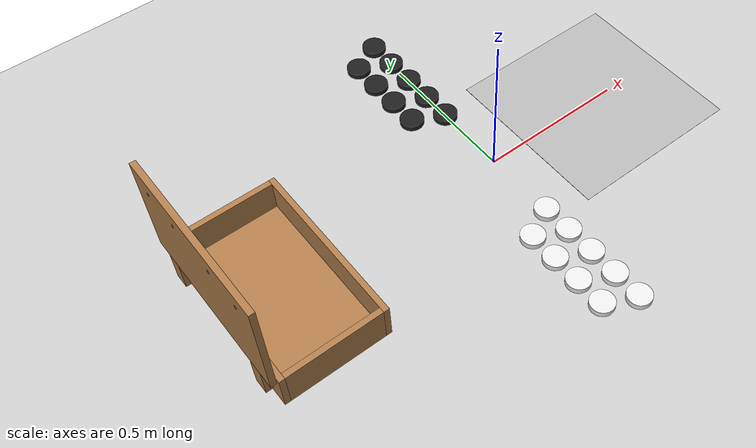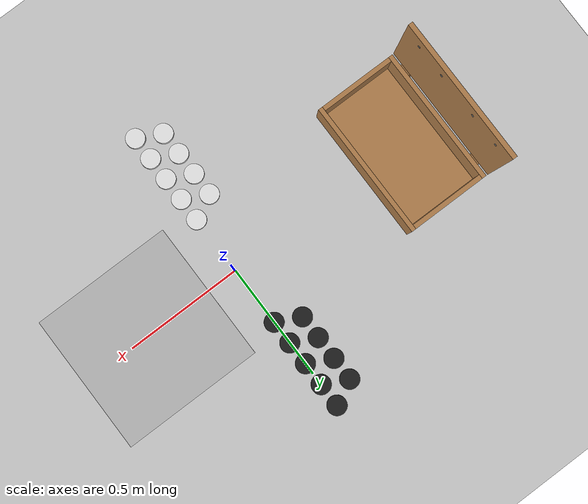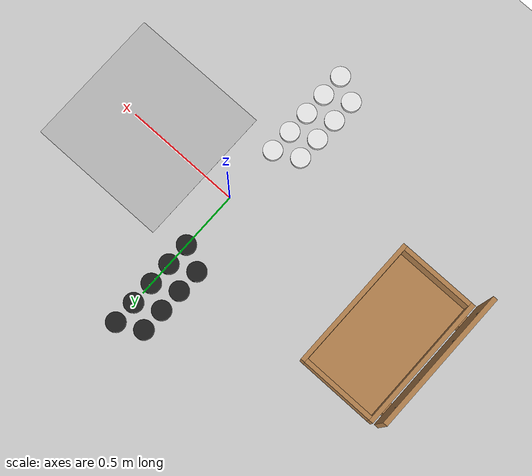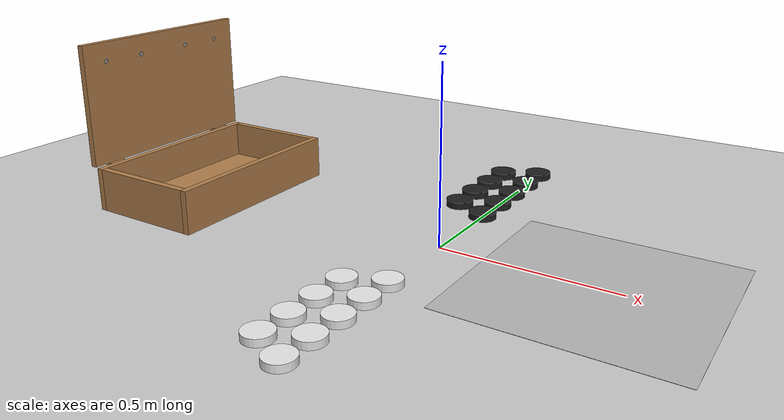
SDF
<sdf version="1.6">
 <world name="default">
  <light name="sun" type="directional">
   <pose>0 0 10 0 -0 0</pose>
   <diffuse>0.8 0.8 0.8 1</diffuse>
   <specular>0.2 0.2 0.2 1</specular>
   <attenuation>
    <range>1000</range>
    <constant>0.9</constant>
    <linear>0.01</linear>
    <quadratic>0.001</quadratic>
   </attenuation>
   <direction>-0.5 0.1 -0.9</direction>
  </light>
  <model name="ground_plane">
   <static>1</static>
   <link name="link">
    <collision name="collision">
     <geometry><plane><normal>0 0 1</normal><size>100 100</size></plane></geometry>
     <surface>
      <contact><collide_bitmask>65535</collide_bitmask></contact>
      <friction><ode><mu>100</mu><mu2>50</mu2></ode></friction>
     </surface>
    </collision>
    <visual name="visual">
     <cast_shadows>0</cast_shadows>
     <geometry><plane><normal>0 0 1</normal><size>100 100</size></plane></geometry>
     <material>
      <script><uri>file://media/materials/scripts/gazebo.material</uri><name>Gazebo/Grey</name></script>
     </material>
    </visual>
   </link>
  </model>
  <gravity>0 0 -9.8</gravity>
  <magnetic_field>6e-06 2.3e-05 -4.2e-05</magnetic_field>
  <atmosphere type="adiabatic"/>
  <physics name="default_physics" default="0" type="ode">
   <max_step_size>0.002</max_step_size>
   <real_time_factor>1</real_time_factor>
   <real_time_update_rate>1000</real_time_update_rate>
  </physics>
  <scene><ambient>0.4 0.4 0.4 1</ambient><background>0.7 0.7 0.7 1</background><shadows>1</shadows></scene>
  <audio><device>default</device></audio>
  <spherical_coordinates>
   <surface_model>EARTH_WGS84</surface_model>
   <latitude_deg>0</latitude_deg>
   <longitude_deg>0</longitude_deg>
   <elevation>0</elevation>
   <heading_deg>0</heading_deg>
  </spherical_coordinates>
  <model name="wooden_case">
   <link name="base">
    <pose>0 0 0.024 0 -0 0</pose>
    <inertial>
     <pose>-0.022184 0 0.171592 0 -0 0</pose>
     <mass>3.96264</mass>
     <inertia>
      <ixx>0.213536</ixx>
      <ixy>0</ixy>
      <ixz>0.000779377</ixz>
      <iyy>0.0708943</iyy>
      <iyz>0</iyz>
      <izz>0.154604</izz>
     </inertia>
    </inertial>
    <collision name="collision_back">
     <pose>-0.053975 0 0.1778 0 -0 0</pose>
     <geometry><box><size>0.01905 0.5461 0.3175</size></box></geometry>
     <surface>
      <contact>
       <poissons_ratio>0.347</poissons_ratio>
       <elastic_modulus>8.8e+09</elastic_modulus>
       <ode><kp>100000</kp><kd>100</kd><max_vel>100</max_vel><min_depth>0.001</min_depth></ode>
      </contact>
      <friction>
       <torsional>
        <coefficient>1</coefficient>
        <use_patch_radius>0</use_patch_radius>
        <surface_radius>0.01</surface_radius>
       </torsional>
      </friction>
     </surface>
    </collision>
    <visual name="visual_back">
     <pose>-0.053975 0 0.1778 0 -0 0</pose>
     <geometry><box><size>0.01905 0.5461 0.3175</size></box></geometry>
     <material>
      <script><uri>file://media/materials/scripts/gazebo.material</uri><name>Gazebo/Wood</name></script>
     </material>
    </visual>
    <collision name="collision_bottom">
     <pose>0 0 0.009525 0 -0 0</pose>
     <geometry><box><size>0.127 0.5842 0.01905</size></box></geometry>
     <surface>
      <contact>
       <poissons_ratio>0.347</poissons_ratio>
       <elastic_modulus>8.8e+09</elastic_modulus>
       <ode><kp>100000</kp><kd>100</kd><max_vel>100</max_vel><min_depth>0.001</min_depth></ode>
      </contact>
      <friction>
       <torsional>
        <coefficient>1</coefficient>
        <use_patch_radius>0</use_patch_radius>
        <surface_radius>0.01</surface_radius>
       </torsional>
      </friction>
     </surface>
    </collision>
    <visual name="visual_bottom">
     <pose>0 0 0.009525 0 -0 0</pose>
     <geometry><box><size>0.127 0.5842 0.01905</size></box></geometry>
     <material>
      <script><uri>file://media/materials/scripts/gazebo.material</uri><name>Gazebo/Wood</name></script>
     </material>
    </visual>
    <collision name="collision_top">
     <pose>0 0 0.346075 0 -0 0</pose>
     <geometry><box><size>0.127 0.5842 0.01905</size></box></geometry>
     <surface>
      <contact>
       <poissons_ratio>0.347</poissons_ratio>
       <elastic_modulus>8.8e+09</elastic_modulus>
       <ode><kp>100000</kp><kd>100</kd><max_vel>100</max_vel><min_depth>0.001</min_depth></ode>
      </contact>
      <friction>
       <torsional>
        <coefficient>1</coefficient>
        <use_patch_radius>0</use_patch_radius>
        <surface_radius>0.01</surface_radius>
       </torsional>
      </friction>
     </surface>
    </collision>
    <visual name="visual_top">
     <pose>0 0 0.346075 0 -0 0</pose>
     <geometry><box><size>0.127 0.5842 0.01905</size></box></geometry>
     <material>
      <script><uri>file://media/materials/scripts/gazebo.material</uri><name>Gazebo/Wood</name></script>
     </material>
    </visual>
    <collision name="collision_left">
     <pose>0 -0.282575 0.1778 0 -0 0</pose>
     <geometry><box><size>0.127 0.01905 0.3175</size></box></geometry>
     <surface>
      <contact>
       <poissons_ratio>0.347</poissons_ratio>
       <elastic_modulus>8.8e+09</elastic_modulus>
       <ode><kp>100000</kp><kd>100</kd><max_vel>100</max_vel><min_depth>0.001</min_depth></ode>
      </contact>
      <friction>
       <torsional>
        <coefficient>1</coefficient>
        <use_patch_radius>0</use_patch_radius>
        <surface_radius>0.01</surface_radius>
       </torsional>
      </friction>
     </surface>
    </collision>
    <visual name="visual_left">
     <pose>0 -0.282575 0.1778 0 -0 0</pose>
     <geometry><box><size>0.127 0.01905 0.3175</size></box></geometry>
     <material>
      <script><uri>file://media/materials/scripts/gazebo.material</uri><name>Gazebo/Wood</name></script>
     </material>
    </visual>
    <collision name="collision_right">
     <pose>0 0.282575 0.1778 0 -0 0</pose>
     <geometry><box><size>0.127 0.01905 0.3175</size></box></geometry>
     <surface>
      <contact>
       <poissons_ratio>0.347</poissons_ratio>
       <elastic_modulus>8.8e+09</elastic_modulus>
       <ode><kp>100000</kp><kd>100</kd><max_vel>100</max_vel><min_depth>0.001</min_depth></ode>
      </contact>
      <friction>
       <torsional>
        <coefficient>1</coefficient>
        <use_patch_radius>0</use_patch_radius>
        <surface_radius>0.01</surface_radius>
       </torsional>
      </friction>
     </surface>
    </collision>
    <visual name="visual_right">
     <pose>0 0.282575 0.1778 0 -0 0</pose>
     <geometry><box><size>0.127 0.01905 0.3175</size></box></geometry>
     <material>
      <script><uri>file://media/materials/scripts/gazebo.material</uri><name>Gazebo/Wood</name></script>
     </material>
    </visual>
    <collision name="collision_block_left">
     <pose>0.0095 -0.2151 -0.012 0 -0 0</pose>
     <geometry><box><size>0.108 0.05 0.024</size></box></geometry>
     <surface>
      <contact>
       <poissons_ratio>0.347</poissons_ratio>
       <elastic_modulus>8.8e+09</elastic_modulus>
       <ode><kp>100000</kp><kd>100</kd><max_vel>100</max_vel><min_depth>0.001</min_depth></ode>
      </contact>
      <friction>
       <torsional>
        <coefficient>1</coefficient>
        <use_patch_radius>0</use_patch_radius>
        <surface_radius>0.01</surface_radius>
       </torsional>
      </friction>
     </surface>
    </collision>
    <visual name="visual_block_left">
     <pose>0.0095 -0.2151 -0.012 0 -0 0</pose>
     <geometry><box><size>0.108 0.05 0.024</size></box></geometry>
     <material>
      <script><uri>file://media/materials/scripts/gazebo.material</uri><name>Gazebo/Wood</name></script>
     </material>
    </visual>
    <collision name="collision_block_right">
     <pose>0.0095 0.2151 -0.012 0 -0 0</pose>
     <geometry><box><size>0.108 0.05 0.024</size></box></geometry>
     <surface>
      <contact>
       <poissons_ratio>0.347</poissons_ratio>
       <elastic_modulus>8.8e+09</elastic_modulus>
       <ode><kp>100000</kp><kd>100</kd><max_vel>100</max_vel><min_depth>0.001</min_depth></ode>
      </contact>
      <friction>
       <torsional>
        <coefficient>1</coefficient>
        <use_patch_radius>0</use_patch_radius>
        <surface_radius>0.01</surface_radius>
       </torsional>
      </friction>
     </surface>
    </collision>
    <visual name="visual_block_right">
     <pose>0.0095 0.2151 -0.012 0 -0 0</pose>
     <geometry><box><size>0.108 0.05 0.024</size></box></geometry>
     <material>
      <script><uri>file://media/materials/scripts/gazebo.material</uri><name>Gazebo/Wood</name></script>
     </material>
    </visual>
   </link>
   <link name="lid">
    <pose>0.243775 0 0.009525 0 -0 0</pose>
    <inertial>
     <mass>1.97874</mass>
     <inertia>
      <ixx>0.0563367</ixx>
      <ixy>0</ixy>
      <ixz>0</ixz>
      <iyy>0.020911</iyy>
      <iyz>0</iyz>
      <izz>0.0771281</izz>
     </inertia>
    </inertial>
    <collision name="collision">
     <geometry><box><size>0.3556 0.5842 0.01905</size></box></geometry>
     <surface>
      <contact>
       <poissons_ratio>0.347</poissons_ratio>
       <elastic_modulus>8.8e+09</elastic_modulus>
       <ode><kp>100000</kp><kd>100</kd><max_vel>100</max_vel><min_depth>0.001</min_depth></ode>
      </contact>
      <friction>
       <torsional>
        <coefficient>1</coefficient>
        <use_patch_radius>0</use_patch_radius>
        <surface_radius>0.01</surface_radius>
       </torsional>
      </friction>
     </surface>
    </collision>
    <visual name="visual">
     <geometry><box><size>0.3556 0.5842 0.01905</size></box></geometry>
     <material>
      <script><uri>file://media/materials/scripts/gazebo.material</uri><name>Gazebo/Wood</name></script>
     </material>
    </visual>
    <visual name="tee_nut_1">
     <pose>0.122 -0.216 0 0 -0 0</pose>
     <geometry><cylinder><radius>0.00635</radius><length>0.0192405</length></cylinder></geometry>
     <material>
      <script><uri>file://media/materials/scripts/gazebo.material</uri><name>Gazebo/Grey</name></script>
     </material>
    </visual>
    <visual name="tee_nut_2">
     <pose>0.122 -0.088 0 0 -0 0</pose>
     <geometry><cylinder><radius>0.00635</radius><length>0.0192405</length></cylinder></geometry>
     <material>
      <script><uri>file://media/materials/scripts/gazebo.material</uri><name>Gazebo/Grey</name></script>
     </material>
    </visual>
    <visual name="tee_nut_3">
     <pose>0.122 0.088 0 0 -0 0</pose>
     <geometry><cylinder><radius>0.00635</radius><length>0.0192405</length></cylinder></geometry>
     <material>
      <script><uri>file://media/materials/scripts/gazebo.material</uri><name>Gazebo/Grey</name></script>
     </material>
    </visual>
    <visual name="tee_nut_4">
     <pose>0.122 0.216 0 0 -0 0</pose>
     <geometry><cylinder><radius>0.00635</radius><length>0.0192405</length></cylinder></geometry>
     <material>
      <script><uri>file://media/materials/scripts/gazebo.material</uri><name>Gazebo/Grey</name></script>
     </material>
    </visual>
   </link>
   <joint name="lid_hinge" type="revolute">
    <pose>-0.1778 0 0.01905 0 -0 0</pose>
    <parent>base</parent>
    <child>lid</child>
    <axis>
     <xyz>0 1 0</xyz>
     <limit><upper>0.523599</upper><lower>-1.5708</lower></limit>
     <use_parent_model_frame>0</use_parent_model_frame>
     <dynamics><spring_reference>0</spring_reference><spring_stiffness>0</spring_stiffness></dynamics>
    </axis>
   </joint>
   <pose>-0.999997 0 0.062475 0.000939 -1.57074 3.13906</pose>
  </model>
  <model name="black_piece">
   <link name="link">
    <inertial>
     <mass>0.2</mass>
     <inertia>
      <ixx>8.667e-05</ixx>
      <ixy>0</ixy>
      <ixz>0</ixz>
      <iyy>8.667e-05</iyy>
      <iyz>0</iyz>
      <izz>0.00016</izz>
     </inertia>
    </inertial>
    <visual name="visual">
     <geometry><cylinder><radius>0.04</radius><length>0.02</length></cylinder></geometry>
     <material>
      <script><name>Gazebo/Black</name><uri>file://media/materials/scripts/gazebo.material</uri></script>
      <shader type="vertex"><normal_map>__default__</normal_map></shader>
     </material>
    </visual>
    <collision name="collision">
     <geometry><cylinder><radius>0.04</radius><length>0.02</length></cylinder></geometry>
     <surface>
      <friction>
       <ode><mu>1</mu><mu2>1</mu2><fdir1>0 0 0</fdir1><slip1>0</slip1><slip2>0</slip2></ode>
       <torsional>
        <coefficient>1</coefficient>
        <patch_radius>0</patch_radius>
        <surface_radius>0</surface_radius>
        <use_patch_radius>1</use_patch_radius>
        <ode><slip>0</slip></ode>
       </torsional>
      </friction>
      <bounce><restitution_coefficient>0</restitution_coefficient><threshold>1e+06</threshold></bounce>
      <contact>
       <collide_without_contact>0</collide_without_contact>
       <collide_without_contact_bitmask>1</collide_without_contact_bitmask>
       <collide_bitmask>1</collide_bitmask>
       <ode>
        <soft_cfm>0</soft_cfm>
        <soft_erp>0.2</soft_erp>
        <kp>1e+13</kp>
        <kd>1</kd>
        <max_vel>1</max_vel>
        <min_depth>0</min_depth>
       </ode>
       <bullet>
        <split_impulse>1</split_impulse>
        <split_impulse_penetration_threshold>-0.01</split_impulse_penetration_threshold>
        <soft_cfm>0</soft_cfm>
        <soft_erp>0.2</soft_erp>
        <kp>1e+13</kp>
        <kd>1</kd>
       </bullet>
      </contact>
     </surface>
    </collision>
   </link>
   <static>0</static>
   <pose>-5e-06 0.250002 0.009993 -0.000139 0.000139 0.000142</pose>
  </model>
  <model name="black_piece_0">
   <link name="link">
    <inertial>
     <mass>0.2</mass>
     <inertia>
      <ixx>8.667e-05</ixx>
      <ixy>0</ixy>
      <ixz>0</ixz>
      <iyy>8.667e-05</iyy>
      <iyz>0</iyz>
      <izz>0.00016</izz>
     </inertia>
    </inertial>
    <visual name="visual">
     <geometry><cylinder><radius>0.04</radius><length>0.02</length></cylinder></geometry>
     <material>
      <script><name>Gazebo/Black</name><uri>file://media/materials/scripts/gazebo.material</uri></script>
      <shader type="vertex"><normal_map>__default__</normal_map></shader>
     </material>
    </visual>
    <collision name="collision">
     <geometry><cylinder><radius>0.04</radius><length>0.02</length></cylinder></geometry>
     <surface>
      <friction>
       <ode><mu>1</mu><mu2>1</mu2><fdir1>0 0 0</fdir1><slip1>0</slip1><slip2>0</slip2></ode>
       <torsional>
        <coefficient>1</coefficient>
        <patch_radius>0</patch_radius>
        <surface_radius>0</surface_radius>
        <use_patch_radius>1</use_patch_radius>
        <ode><slip>0</slip></ode>
       </torsional>
      </friction>
      <bounce><restitution_coefficient>0</restitution_coefficient><threshold>1e+06</threshold></bounce>
      <contact>
       <collide_without_contact>0</collide_without_contact>
       <collide_without_contact_bitmask>1</collide_without_contact_bitmask>
       <collide_bitmask>1</collide_bitmask>
       <ode>
        <soft_cfm>0</soft_cfm>
        <soft_erp>0.2</soft_erp>
        <kp>1e+13</kp>
        <kd>1</kd>
        <max_vel>1</max_vel>
        <min_depth>0</min_depth>
       </ode>
       <bullet>
        <split_impulse>1</split_impulse>
        <split_impulse_penetration_threshold>-0.01</split_impulse_penetration_threshold>
        <soft_cfm>0</soft_cfm>
        <soft_erp>0.2</soft_erp>
        <kp>1e+13</kp>
        <kd>1</kd>
       </bullet>
      </contact>
     </surface>
    </collision>
   </link>
   <static>0</static>
   <pose>2e-06 0.349998 0.009971 3.5e-05 3.1e-05 -3e-06</pose>
  </model>
  <model name="black_piece_1">
   <link name="link">
    <inertial>
     <mass>0.2</mass>
     <inertia>
      <ixx>8.667e-05</ixx>
      <ixy>0</ixy>
      <ixz>0</ixz>
      <iyy>8.667e-05</iyy>
      <iyz>0</iyz>
      <izz>0.00016</izz>
     </inertia>
    </inertial>
    <visual name="visual">
     <geometry><cylinder><radius>0.04</radius><length>0.02</length></cylinder></geometry>
     <material>
      <script><name>Gazebo/Black</name><uri>file://media/materials/scripts/gazebo.material</uri></script>
      <shader type="vertex"><normal_map>__default__</normal_map></shader>
     </material>
    </visual>
    <collision name="collision">
     <geometry><cylinder><radius>0.04</radius><length>0.02</length></cylinder></geometry>
     <surface>
      <friction>
       <ode><mu>1</mu><mu2>1</mu2><fdir1>0 0 0</fdir1><slip1>0</slip1><slip2>0</slip2></ode>
       <torsional>
        <coefficient>1</coefficient>
        <patch_radius>0</patch_radius>
        <surface_radius>0</surface_radius>
        <use_patch_radius>1</use_patch_radius>
        <ode><slip>0</slip></ode>
       </torsional>
      </friction>
      <bounce><restitution_coefficient>0</restitution_coefficient><threshold>1e+06</threshold></bounce>
      <contact>
       <collide_without_contact>0</collide_without_contact>
       <collide_without_contact_bitmask>1</collide_without_contact_bitmask>
       <collide_bitmask>1</collide_bitmask>
       <ode>
        <soft_cfm>0</soft_cfm>
        <soft_erp>0.2</soft_erp>
        <kp>1e+13</kp>
        <kd>1</kd>
        <max_vel>1</max_vel>
        <min_depth>0</min_depth>
       </ode>
       <bullet>
        <split_impulse>1</split_impulse>
        <split_impulse_penetration_threshold>-0.01</split_impulse_penetration_threshold>
        <soft_cfm>0</soft_cfm>
        <soft_erp>0.2</soft_erp>
        <kp>1e+13</kp>
        <kd>1</kd>
       </bullet>
      </contact>
     </surface>
    </collision>
   </link>
   <static>0</static>
   <pose>5e-06 0.449996 0.009985 0.000117 0.000116 -5.7e-05</pose>
  </model>
  <model name="black_piece_2">
   <link name="link">
    <inertial>
     <mass>0.2</mass>
     <inertia>
      <ixx>8.667e-05</ixx>
      <ixy>0</ixy>
      <ixz>0</ixz>
      <iyy>8.667e-05</iyy>
      <iyz>0</iyz>
      <izz>0.00016</izz>
     </inertia>
    </inertial>
    <visual name="visual">
     <geometry><cylinder><radius>0.04</radius><length>0.02</length></cylinder></geometry>
     <material>
      <script><name>Gazebo/Black</name><uri>file://media/materials/scripts/gazebo.material</uri></script>
      <shader type="vertex"><normal_map>__default__</normal_map></shader>
     </material>
    </visual>
    <collision name="collision">
     <geometry><cylinder><radius>0.04</radius><length>0.02</length></cylinder></geometry>
     <surface>
      <friction>
       <ode><mu>1</mu><mu2>1</mu2><fdir1>0 0 0</fdir1><slip1>0</slip1><slip2>0</slip2></ode>
       <torsional>
        <coefficient>1</coefficient>
        <patch_radius>0</patch_radius>
        <surface_radius>0</surface_radius>
        <use_patch_radius>1</use_patch_radius>
        <ode><slip>0</slip></ode>
       </torsional>
      </friction>
      <bounce><restitution_coefficient>0</restitution_coefficient><threshold>1e+06</threshold></bounce>
      <contact>
       <collide_without_contact>0</collide_without_contact>
       <collide_without_contact_bitmask>1</collide_without_contact_bitmask>
       <collide_bitmask>1</collide_bitmask>
       <ode>
        <soft_cfm>0</soft_cfm>
        <soft_erp>0.2</soft_erp>
        <kp>1e+13</kp>
        <kd>1</kd>
        <max_vel>1</max_vel>
        <min_depth>0</min_depth>
       </ode>
       <bullet>
        <split_impulse>1</split_impulse>
        <split_impulse_penetration_threshold>-0.01</split_impulse_penetration_threshold>
        <soft_cfm>0</soft_cfm>
        <soft_erp>0.2</soft_erp>
        <kp>1e+13</kp>
        <kd>1</kd>
       </bullet>
      </contact>
     </surface>
    </collision>
   </link>
   <static>0</static>
   <pose>-1.4e-05 0.550035 0.01 0 -0 -0.000899</pose>
  </model>
  <model name="black_piece_3">
   <link name="link">
    <inertial>
     <mass>0.2</mass>
     <inertia>
      <ixx>8.667e-05</ixx>
      <ixy>0</ixy>
      <ixz>0</ixz>
      <iyy>8.667e-05</iyy>
      <iyz>0</iyz>
      <izz>0.00016</izz>
     </inertia>
    </inertial>
    <visual name="visual">
     <geometry><cylinder><radius>0.04</radius><length>0.02</length></cylinder></geometry>
     <material>
      <script><name>Gazebo/Black</name><uri>file://media/materials/scripts/gazebo.material</uri></script>
      <shader type="vertex"><normal_map>__default__</normal_map></shader>
     </material>
    </visual>
    <collision name="collision">
     <geometry><cylinder><radius>0.04</radius><length>0.02</length></cylinder></geometry>
     <surface>
      <friction>
       <ode><mu>1</mu><mu2>1</mu2><fdir1>0 0 0</fdir1><slip1>0</slip1><slip2>0</slip2></ode>
       <torsional>
        <coefficient>1</coefficient>
        <patch_radius>0</patch_radius>
        <surface_radius>0</surface_radius>
        <use_patch_radius>1</use_patch_radius>
        <ode><slip>0</slip></ode>
       </torsional>
      </friction>
      <bounce><restitution_coefficient>0</restitution_coefficient><threshold>1e+06</threshold></bounce>
      <contact>
       <collide_without_contact>0</collide_without_contact>
       <collide_without_contact_bitmask>1</collide_without_contact_bitmask>
       <collide_bitmask>1</collide_bitmask>
       <ode>
        <soft_cfm>0</soft_cfm>
        <soft_erp>0.2</soft_erp>
        <kp>1e+13</kp>
        <kd>1</kd>
        <max_vel>1</max_vel>
        <min_depth>0</min_depth>
       </ode>
       <bullet>
        <split_impulse>1</split_impulse>
        <split_impulse_penetration_threshold>-0.01</split_impulse_penetration_threshold>
        <soft_cfm>0</soft_cfm>
        <soft_erp>0.2</soft_erp>
        <kp>1e+13</kp>
        <kd>1</kd>
       </bullet>
      </contact>
     </surface>
    </collision>
   </link>
   <static>0</static>
   <pose>-4e-06 0.650004 0.009996 -7.3e-05 -7.5e-05 -1.8e-05</pose>
  </model>
  <model name="black_piece_4">
   <link name="link">
    <inertial>
     <mass>0.2</mass>
     <inertia>
      <ixx>8.667e-05</ixx>
      <ixy>0</ixy>
      <ixz>0</ixz>
      <iyy>8.667e-05</iyy>
      <iyz>0</iyz>
      <izz>0.00016</izz>
     </inertia>
    </inertial>
    <visual name="visual">
     <geometry><cylinder><radius>0.04</radius><length>0.02</length></cylinder></geometry>
     <material>
      <script><name>Gazebo/Black</name><uri>file://media/materials/scripts/gazebo.material</uri></script>
      <shader type="vertex"><normal_map>__default__</normal_map></shader>
     </material>
    </visual>
    <collision name="collision">
     <geometry><cylinder><radius>0.04</radius><length>0.02</length></cylinder></geometry>
     <surface>
      <friction>
       <ode><mu>1</mu><mu2>1</mu2><fdir1>0 0 0</fdir1><slip1>0</slip1><slip2>0</slip2></ode>
       <torsional>
        <coefficient>1</coefficient>
        <patch_radius>0</patch_radius>
        <surface_radius>0</surface_radius>
        <use_patch_radius>1</use_patch_radius>
        <ode><slip>0</slip></ode>
       </torsional>
      </friction>
      <bounce><restitution_coefficient>0</restitution_coefficient><threshold>1e+06</threshold></bounce>
      <contact>
       <collide_without_contact>0</collide_without_contact>
       <collide_without_contact_bitmask>1</collide_without_contact_bitmask>
       <collide_bitmask>1</collide_bitmask>
       <ode>
        <soft_cfm>0</soft_cfm>
        <soft_erp>0.2</soft_erp>
        <kp>1e+13</kp>
        <kd>1</kd>
        <max_vel>1</max_vel>
        <min_depth>0</min_depth>
       </ode>
       <bullet>
        <split_impulse>1</split_impulse>
        <split_impulse_penetration_threshold>-0.01</split_impulse_penetration_threshold>
        <soft_cfm>0</soft_cfm>
        <soft_erp>0.2</soft_erp>
        <kp>1e+13</kp>
        <kd>1</kd>
       </bullet>
      </contact>
     </surface>
    </collision>
   </link>
   <static>0</static>
   <pose>-0.100004 0.300004 0.009965 5.2e-05 5.2e-05 -6e-06</pose>
  </model>
  <model name="black_piece_5">
   <link name="link">
    <inertial>
     <mass>0.2</mass>
     <inertia>
      <ixx>8.667e-05</ixx>
      <ixy>0</ixy>
      <ixz>0</ixz>
      <iyy>8.667e-05</iyy>
      <iyz>0</iyz>
      <izz>0.00016</izz>
     </inertia>
    </inertial>
    <visual name="visual">
     <geometry><cylinder><radius>0.04</radius><length>0.02</length></cylinder></geometry>
     <material>
      <script><name>Gazebo/Black</name><uri>file://media/materials/scripts/gazebo.material</uri></script>
      <shader type="vertex"><normal_map>__default__</normal_map></shader>
     </material>
    </visual>
    <collision name="collision">
     <geometry><cylinder><radius>0.04</radius><length>0.02</length></cylinder></geometry>
     <surface>
      <friction>
       <ode><mu>1</mu><mu2>1</mu2><fdir1>0 0 0</fdir1><slip1>0</slip1><slip2>0</slip2></ode>
       <torsional>
        <coefficient>1</coefficient>
        <patch_radius>0</patch_radius>
        <surface_radius>0</surface_radius>
        <use_patch_radius>1</use_patch_radius>
        <ode><slip>0</slip></ode>
       </torsional>
      </friction>
      <bounce><restitution_coefficient>0</restitution_coefficient><threshold>1e+06</threshold></bounce>
      <contact>
       <collide_without_contact>0</collide_without_contact>
       <collide_without_contact_bitmask>1</collide_without_contact_bitmask>
       <collide_bitmask>1</collide_bitmask>
       <ode>
        <soft_cfm>0</soft_cfm>
        <soft_erp>0.2</soft_erp>
        <kp>1e+13</kp>
        <kd>1</kd>
        <max_vel>1</max_vel>
        <min_depth>0</min_depth>
       </ode>
       <bullet>
        <split_impulse>1</split_impulse>
        <split_impulse_penetration_threshold>-0.01</split_impulse_penetration_threshold>
        <soft_cfm>0</soft_cfm>
        <soft_erp>0.2</soft_erp>
        <kp>1e+13</kp>
        <kd>1</kd>
       </bullet>
      </contact>
     </surface>
    </collision>
   </link>
   <static>0</static>
   <pose>-0.1 0.4 0.009994 -3.8e-05 -3.8e-05 -8e-06</pose>
  </model>
  <model name="black_piece_6">
   <link name="link">
    <inertial>
     <mass>0.2</mass>
     <inertia>
      <ixx>8.667e-05</ixx>
      <ixy>0</ixy>
      <ixz>0</ixz>
      <iyy>8.667e-05</iyy>
      <iyz>0</iyz>
      <izz>0.00016</izz>
     </inertia>
    </inertial>
    <visual name="visual">
     <geometry><cylinder><radius>0.04</radius><length>0.02</length></cylinder></geometry>
     <material>
      <script><name>Gazebo/Black</name><uri>file://media/materials/scripts/gazebo.material</uri></script>
      <shader type="vertex"><normal_map>__default__</normal_map></shader>
     </material>
    </visual>
    <collision name="collision">
     <geometry><cylinder><radius>0.04</radius><length>0.02</length></cylinder></geometry>
     <surface>
      <friction>
       <ode><mu>1</mu><mu2>1</mu2><fdir1>0 0 0</fdir1><slip1>0</slip1><slip2>0</slip2></ode>
       <torsional>
        <coefficient>1</coefficient>
        <patch_radius>0</patch_radius>
        <surface_radius>0</surface_radius>
        <use_patch_radius>1</use_patch_radius>
        <ode><slip>0</slip></ode>
       </torsional>
      </friction>
      <bounce><restitution_coefficient>0</restitution_coefficient><threshold>1e+06</threshold></bounce>
      <contact>
       <collide_without_contact>0</collide_without_contact>
       <collide_without_contact_bitmask>1</collide_without_contact_bitmask>
       <collide_bitmask>1</collide_bitmask>
       <ode>
        <soft_cfm>0</soft_cfm>
        <soft_erp>0.2</soft_erp>
        <kp>1e+13</kp>
        <kd>1</kd>
        <max_vel>1</max_vel>
        <min_depth>0</min_depth>
       </ode>
       <bullet>
        <split_impulse>1</split_impulse>
        <split_impulse_penetration_threshold>-0.01</split_impulse_penetration_threshold>
        <soft_cfm>0</soft_cfm>
        <soft_erp>0.2</soft_erp>
        <kp>1e+13</kp>
        <kd>1</kd>
       </bullet>
      </contact>
     </surface>
    </collision>
   </link>
   <static>0</static>
   <pose>-0.10001 0.600036 0.01 0 0 -0.000985</pose>
  </model>
  <model name="black_piece_7">
   <link name="link">
    <inertial>
     <mass>0.2</mass>
     <inertia>
      <ixx>8.667e-05</ixx>
      <ixy>0</ixy>
      <ixz>0</ixz>
      <iyy>8.667e-05</iyy>
      <iyz>0</iyz>
      <izz>0.00016</izz>
     </inertia>
    </inertial>
    <visual name="visual">
     <geometry><cylinder><radius>0.04</radius><length>0.02</length></cylinder></geometry>
     <material>
      <script><name>Gazebo/Black</name><uri>file://media/materials/scripts/gazebo.material</uri></script>
      <shader type="vertex"><normal_map>__default__</normal_map></shader>
     </material>
    </visual>
    <collision name="collision">
     <geometry><cylinder><radius>0.04</radius><length>0.02</length></cylinder></geometry>
     <surface>
      <friction>
       <ode><mu>1</mu><mu2>1</mu2><fdir1>0 0 0</fdir1><slip1>0</slip1><slip2>0</slip2></ode>
       <torsional>
        <coefficient>1</coefficient>
        <patch_radius>0</patch_radius>
        <surface_radius>0</surface_radius>
        <use_patch_radius>1</use_patch_radius>
        <ode><slip>0</slip></ode>
       </torsional>
      </friction>
      <bounce><restitution_coefficient>0</restitution_coefficient><threshold>1e+06</threshold></bounce>
      <contact>
       <collide_without_contact>0</collide_without_contact>
       <collide_without_contact_bitmask>1</collide_without_contact_bitmask>
       <collide_bitmask>1</collide_bitmask>
       <ode>
        <soft_cfm>0</soft_cfm>
        <soft_erp>0.2</soft_erp>
        <kp>1e+13</kp>
        <kd>1</kd>
        <max_vel>1</max_vel>
        <min_depth>0</min_depth>
       </ode>
       <bullet>
        <split_impulse>1</split_impulse>
        <split_impulse_penetration_threshold>-0.01</split_impulse_penetration_threshold>
        <soft_cfm>0</soft_cfm>
        <soft_erp>0.2</soft_erp>
        <kp>1e+13</kp>
        <kd>1</kd>
       </bullet>
      </contact>
     </surface>
    </collision>
   </link>
   <static>0</static>
   <pose>-0.099997 0.500042 0.01 0 -0 0.000868</pose>
  </model>
  <model name="white_piece">
   <link name="link">
    <inertial>
     <mass>0.2</mass>
     <inertia>
      <ixx>8.667e-05</ixx>
      <ixy>0</ixy>
      <ixz>0</ixz>
      <iyy>8.667e-05</iyy>
      <iyz>0</iyz>
      <izz>0.00016</izz>
     </inertia>
    </inertial>
    <visual name="visual">
     <geometry><cylinder><radius>0.04</radius><length>0.02</length></cylinder></geometry>
     <material>
      <script><name>Gazebo/White</name><uri>file://media/materials/scripts/gazebo.material</uri></script>
      <shader type="vertex"><normal_map>__default__</normal_map></shader>
     </material>
    </visual>
    <collision name="collision">
     <geometry><cylinder><radius>0.04</radius><length>0.02</length></cylinder></geometry>
     <surface>
      <friction>
       <ode><mu>1</mu><mu2>1</mu2><fdir1>0 0 0</fdir1><slip1>0</slip1><slip2>0</slip2></ode>
       <torsional>
        <coefficient>1</coefficient>
        <patch_radius>0</patch_radius>
        <surface_radius>0</surface_radius>
        <use_patch_radius>1</use_patch_radius>
        <ode><slip>0</slip></ode>
       </torsional>
      </friction>
      <bounce><restitution_coefficient>0</restitution_coefficient><threshold>1e+06</threshold></bounce>
      <contact>
       <collide_without_contact>0</collide_without_contact>
       <collide_without_contact_bitmask>1</collide_without_contact_bitmask>
       <collide_bitmask>1</collide_bitmask>
       <ode>
        <soft_cfm>0</soft_cfm>
        <soft_erp>0.2</soft_erp>
        <kp>1e+13</kp>
        <kd>1</kd>
        <max_vel>1</max_vel>
        <min_depth>0</min_depth>
       </ode>
       <bullet>
        <split_impulse>1</split_impulse>
        <split_impulse_penetration_threshold>-0.01</split_impulse_penetration_threshold>
        <soft_cfm>0</soft_cfm>
        <soft_erp>0.2</soft_erp>
        <kp>1e+13</kp>
        <kd>1</kd>
       </bullet>
      </contact>
     </surface>
    </collision>
   </link>
   <static>0</static>
   <pose>-0 -0.25 0.009996 4.8e-05 5.4e-05 -1.1e-05</pose>
  </model>
  <model name="white_piece_0">
   <link name="link">
    <inertial>
     <mass>0.2</mass>
     <inertia>
      <ixx>8.667e-05</ixx>
      <ixy>0</ixy>
      <ixz>0</ixz>
      <iyy>8.667e-05</iyy>
      <iyz>0</iyz>
      <izz>0.00016</izz>
     </inertia>
    </inertial>
    <visual name="visual">
     <geometry><cylinder><radius>0.04</radius><length>0.02</length></cylinder></geometry>
     <material>
      <script><name>Gazebo/White</name><uri>file://media/materials/scripts/gazebo.material</uri></script>
      <shader type="vertex"><normal_map>__default__</normal_map></shader>
     </material>
    </visual>
    <collision name="collision">
     <geometry><cylinder><radius>0.04</radius><length>0.02</length></cylinder></geometry>
     <surface>
      <friction>
       <ode><mu>1</mu><mu2>1</mu2><fdir1>0 0 0</fdir1><slip1>0</slip1><slip2>0</slip2></ode>
       <torsional>
        <coefficient>1</coefficient>
        <patch_radius>0</patch_radius>
        <surface_radius>0</surface_radius>
        <use_patch_radius>1</use_patch_radius>
        <ode><slip>0</slip></ode>
       </torsional>
      </friction>
      <bounce><restitution_coefficient>0</restitution_coefficient><threshold>1e+06</threshold></bounce>
      <contact>
       <collide_without_contact>0</collide_without_contact>
       <collide_without_contact_bitmask>1</collide_without_contact_bitmask>
       <collide_bitmask>1</collide_bitmask>
       <ode>
        <soft_cfm>0</soft_cfm>
        <soft_erp>0.2</soft_erp>
        <kp>1e+13</kp>
        <kd>1</kd>
        <max_vel>1</max_vel>
        <min_depth>0</min_depth>
       </ode>
       <bullet>
        <split_impulse>1</split_impulse>
        <split_impulse_penetration_threshold>-0.01</split_impulse_penetration_threshold>
        <soft_cfm>0</soft_cfm>
        <soft_erp>0.2</soft_erp>
        <kp>1e+13</kp>
        <kd>1</kd>
       </bullet>
      </contact>
     </surface>
    </collision>
   </link>
   <static>0</static>
   <pose>-2.7e-05 -0.349955 0.01 0 0 -0.00113</pose>
  </model>
  <model name="white_piece_1">
   <link name="link">
    <inertial>
     <mass>0.2</mass>
     <inertia>
      <ixx>8.667e-05</ixx>
      <ixy>0</ixy>
      <ixz>0</ixz>
      <iyy>8.667e-05</iyy>
      <iyz>0</iyz>
      <izz>0.00016</izz>
     </inertia>
    </inertial>
    <visual name="visual">
     <geometry><cylinder><radius>0.04</radius><length>0.02</length></cylinder></geometry>
     <material>
      <script><name>Gazebo/White</name><uri>file://media/materials/scripts/gazebo.material</uri></script>
      <shader type="vertex"><normal_map>__default__</normal_map></shader>
     </material>
    </visual>
    <collision name="collision">
     <geometry><cylinder><radius>0.04</radius><length>0.02</length></cylinder></geometry>
     <surface>
      <friction>
       <ode><mu>1</mu><mu2>1</mu2><fdir1>0 0 0</fdir1><slip1>0</slip1><slip2>0</slip2></ode>
       <torsional>
        <coefficient>1</coefficient>
        <patch_radius>0</patch_radius>
        <surface_radius>0</surface_radius>
        <use_patch_radius>1</use_patch_radius>
        <ode><slip>0</slip></ode>
       </torsional>
      </friction>
      <bounce><restitution_coefficient>0</restitution_coefficient><threshold>1e+06</threshold></bounce>
      <contact>
       <collide_without_contact>0</collide_without_contact>
       <collide_without_contact_bitmask>1</collide_without_contact_bitmask>
       <collide_bitmask>1</collide_bitmask>
       <ode>
        <soft_cfm>0</soft_cfm>
        <soft_erp>0.2</soft_erp>
        <kp>1e+13</kp>
        <kd>1</kd>
        <max_vel>1</max_vel>
        <min_depth>0</min_depth>
       </ode>
       <bullet>
        <split_impulse>1</split_impulse>
        <split_impulse_penetration_threshold>-0.01</split_impulse_penetration_threshold>
        <soft_cfm>0</soft_cfm>
        <soft_erp>0.2</soft_erp>
        <kp>1e+13</kp>
        <kd>1</kd>
       </bullet>
      </contact>
     </surface>
    </collision>
   </link>
   <static>0</static>
   <pose>-0 -0.45 0.009996 -8e-06 -8e-06 2e-06</pose>
  </model>
  <model name="white_piece_2">
   <link name="link">
    <inertial>
     <mass>0.2</mass>
     <inertia>
      <ixx>8.667e-05</ixx>
      <ixy>0</ixy>
      <ixz>0</ixz>
      <iyy>8.667e-05</iyy>
      <iyz>0</iyz>
      <izz>0.00016</izz>
     </inertia>
    </inertial>
    <visual name="visual">
     <geometry><cylinder><radius>0.04</radius><length>0.02</length></cylinder></geometry>
     <material>
      <script><name>Gazebo/White</name><uri>file://media/materials/scripts/gazebo.material</uri></script>
      <shader type="vertex"><normal_map>__default__</normal_map></shader>
     </material>
    </visual>
    <collision name="collision">
     <geometry><cylinder><radius>0.04</radius><length>0.02</length></cylinder></geometry>
     <surface>
      <friction>
       <ode><mu>1</mu><mu2>1</mu2><fdir1>0 0 0</fdir1><slip1>0</slip1><slip2>0</slip2></ode>
       <torsional>
        <coefficient>1</coefficient>
        <patch_radius>0</patch_radius>
        <surface_radius>0</surface_radius>
        <use_patch_radius>1</use_patch_radius>
        <ode><slip>0</slip></ode>
       </torsional>
      </friction>
      <bounce><restitution_coefficient>0</restitution_coefficient><threshold>1e+06</threshold></bounce>
      <contact>
       <collide_without_contact>0</collide_without_contact>
       <collide_without_contact_bitmask>1</collide_without_contact_bitmask>
       <collide_bitmask>1</collide_bitmask>
       <ode>
        <soft_cfm>0</soft_cfm>
        <soft_erp>0.2</soft_erp>
        <kp>1e+13</kp>
        <kd>1</kd>
        <max_vel>1</max_vel>
        <min_depth>0</min_depth>
       </ode>
       <bullet>
        <split_impulse>1</split_impulse>
        <split_impulse_penetration_threshold>-0.01</split_impulse_penetration_threshold>
        <soft_cfm>0</soft_cfm>
        <soft_erp>0.2</soft_erp>
        <kp>1e+13</kp>
        <kd>1</kd>
       </bullet>
      </contact>
     </surface>
    </collision>
   </link>
   <static>0</static>
   <pose>1e-06 -0.550001 0.009965 6.4e-05 8.2e-05 -1.8e-05</pose>
  </model>
  <model name="white_piece_3">
   <link name="link">
    <inertial>
     <mass>0.2</mass>
     <inertia>
      <ixx>8.667e-05</ixx>
      <ixy>0</ixy>
      <ixz>0</ixz>
      <iyy>8.667e-05</iyy>
      <iyz>0</iyz>
      <izz>0.00016</izz>
     </inertia>
    </inertial>
    <visual name="visual">
     <geometry><cylinder><radius>0.04</radius><length>0.02</length></cylinder></geometry>
     <material>
      <script><name>Gazebo/White</name><uri>file://media/materials/scripts/gazebo.material</uri></script>
      <shader type="vertex"><normal_map>__default__</normal_map></shader>
     </material>
    </visual>
    <collision name="collision">
     <geometry><cylinder><radius>0.04</radius><length>0.02</length></cylinder></geometry>
     <surface>
      <friction>
       <ode><mu>1</mu><mu2>1</mu2><fdir1>0 0 0</fdir1><slip1>0</slip1><slip2>0</slip2></ode>
       <torsional>
        <coefficient>1</coefficient>
        <patch_radius>0</patch_radius>
        <surface_radius>0</surface_radius>
        <use_patch_radius>1</use_patch_radius>
        <ode><slip>0</slip></ode>
       </torsional>
      </friction>
      <bounce><restitution_coefficient>0</restitution_coefficient><threshold>1e+06</threshold></bounce>
      <contact>
       <collide_without_contact>0</collide_without_contact>
       <collide_without_contact_bitmask>1</collide_without_contact_bitmask>
       <collide_bitmask>1</collide_bitmask>
       <ode>
        <soft_cfm>0</soft_cfm>
        <soft_erp>0.2</soft_erp>
        <kp>1e+13</kp>
        <kd>1</kd>
        <max_vel>1</max_vel>
        <min_depth>0</min_depth>
       </ode>
       <bullet>
        <split_impulse>1</split_impulse>
        <split_impulse_penetration_threshold>-0.01</split_impulse_penetration_threshold>
        <soft_cfm>0</soft_cfm>
        <soft_erp>0.2</soft_erp>
        <kp>1e+13</kp>
        <kd>1</kd>
       </bullet>
      </contact>
     </surface>
    </collision>
   </link>
   <static>0</static>
   <pose>-1.5e-05 -0.64995 0.009976 -0.00024 -0.000258 -0.00134</pose>
  </model>
  <model name="white_piece_4">
   <link name="link">
    <inertial>
     <mass>0.2</mass>
     <inertia>
      <ixx>8.667e-05</ixx>
      <ixy>0</ixy>
      <ixz>0</ixz>
      <iyy>8.667e-05</iyy>
      <iyz>0</iyz>
      <izz>0.00016</izz>
     </inertia>
    </inertial>
    <visual name="visual">
     <geometry><cylinder><radius>0.04</radius><length>0.02</length></cylinder></geometry>
     <material>
      <script><name>Gazebo/White</name><uri>file://media/materials/scripts/gazebo.material</uri></script>
      <shader type="vertex"><normal_map>__default__</normal_map></shader>
     </material>
    </visual>
    <collision name="collision">
     <geometry><cylinder><radius>0.04</radius><length>0.02</length></cylinder></geometry>
     <surface>
      <friction>
       <ode><mu>1</mu><mu2>1</mu2><fdir1>0 0 0</fdir1><slip1>0</slip1><slip2>0</slip2></ode>
       <torsional>
        <coefficient>1</coefficient>
        <patch_radius>0</patch_radius>
        <surface_radius>0</surface_radius>
        <use_patch_radius>1</use_patch_radius>
        <ode><slip>0</slip></ode>
       </torsional>
      </friction>
      <bounce><restitution_coefficient>0</restitution_coefficient><threshold>1e+06</threshold></bounce>
      <contact>
       <collide_without_contact>0</collide_without_contact>
       <collide_without_contact_bitmask>1</collide_without_contact_bitmask>
       <collide_bitmask>1</collide_bitmask>
       <ode>
        <soft_cfm>0</soft_cfm>
        <soft_erp>0.2</soft_erp>
        <kp>1e+13</kp>
        <kd>1</kd>
        <max_vel>1</max_vel>
        <min_depth>0</min_depth>
       </ode>
       <bullet>
        <split_impulse>1</split_impulse>
        <split_impulse_penetration_threshold>-0.01</split_impulse_penetration_threshold>
        <soft_cfm>0</soft_cfm>
        <soft_erp>0.2</soft_erp>
        <kp>1e+13</kp>
        <kd>1</kd>
       </bullet>
      </contact>
     </surface>
    </collision>
   </link>
   <static>0</static>
   <pose>-0.1 -0.5 0.009994 -3.6e-05 -3.8e-05 -4e-06</pose>
  </model>
  <model name="white_piece_5">
   <link name="link">
    <inertial>
     <mass>0.2</mass>
     <inertia>
      <ixx>8.667e-05</ixx>
      <ixy>0</ixy>
      <ixz>0</ixz>
      <iyy>8.667e-05</iyy>
      <iyz>0</iyz>
      <izz>0.00016</izz>
     </inertia>
    </inertial>
    <visual name="visual">
     <geometry><cylinder><radius>0.04</radius><length>0.02</length></cylinder></geometry>
     <material>
      <script><name>Gazebo/White</name><uri>file://media/materials/scripts/gazebo.material</uri></script>
      <shader type="vertex"><normal_map>__default__</normal_map></shader>
     </material>
    </visual>
    <collision name="collision">
     <geometry><cylinder><radius>0.04</radius><length>0.02</length></cylinder></geometry>
     <surface>
      <friction>
       <ode><mu>1</mu><mu2>1</mu2><fdir1>0 0 0</fdir1><slip1>0</slip1><slip2>0</slip2></ode>
       <torsional>
        <coefficient>1</coefficient>
        <patch_radius>0</patch_radius>
        <surface_radius>0</surface_radius>
        <use_patch_radius>1</use_patch_radius>
        <ode><slip>0</slip></ode>
       </torsional>
      </friction>
      <bounce><restitution_coefficient>0</restitution_coefficient><threshold>1e+06</threshold></bounce>
      <contact>
       <collide_without_contact>0</collide_without_contact>
       <collide_without_contact_bitmask>1</collide_without_contact_bitmask>
       <collide_bitmask>1</collide_bitmask>
       <ode>
        <soft_cfm>0</soft_cfm>
        <soft_erp>0.2</soft_erp>
        <kp>1e+13</kp>
        <kd>1</kd>
        <max_vel>1</max_vel>
        <min_depth>0</min_depth>
       </ode>
       <bullet>
        <split_impulse>1</split_impulse>
        <split_impulse_penetration_threshold>-0.01</split_impulse_penetration_threshold>
        <soft_cfm>0</soft_cfm>
        <soft_erp>0.2</soft_erp>
        <kp>1e+13</kp>
        <kd>1</kd>
       </bullet>
      </contact>
     </surface>
    </collision>
   </link>
   <static>0</static>
   <pose>-0.100005 -0.599922 0.009996 -0.000271 -6.2e-05 -7.9e-05</pose>
  </model>
  <model name="white_piece_6">
   <link name="link">
    <inertial>
     <mass>0.2</mass>
     <inertia>
      <ixx>8.667e-05</ixx>
      <ixy>0</ixy>
      <ixz>0</ixz>
      <iyy>8.667e-05</iyy>
      <iyz>0</iyz>
      <izz>0.00016</izz>
     </inertia>
    </inertial>
    <visual name="visual">
     <geometry><cylinder><radius>0.04</radius><length>0.02</length></cylinder></geometry>
     <material>
      <script><name>Gazebo/White</name><uri>file://media/materials/scripts/gazebo.material</uri></script>
      <shader type="vertex"><normal_map>__default__</normal_map></shader>
     </material>
    </visual>
    <collision name="collision">
     <geometry><cylinder><radius>0.04</radius><length>0.02</length></cylinder></geometry>
     <surface>
      <friction>
       <ode><mu>1</mu><mu2>1</mu2><fdir1>0 0 0</fdir1><slip1>0</slip1><slip2>0</slip2></ode>
       <torsional>
        <coefficient>1</coefficient>
        <patch_radius>0</patch_radius>
        <surface_radius>0</surface_radius>
        <use_patch_radius>1</use_patch_radius>
        <ode><slip>0</slip></ode>
       </torsional>
      </friction>
      <bounce><restitution_coefficient>0</restitution_coefficient><threshold>1e+06</threshold></bounce>
      <contact>
       <collide_without_contact>0</collide_without_contact>
       <collide_without_contact_bitmask>1</collide_without_contact_bitmask>
       <collide_bitmask>1</collide_bitmask>
       <ode>
        <soft_cfm>0</soft_cfm>
        <soft_erp>0.2</soft_erp>
        <kp>1e+13</kp>
        <kd>1</kd>
        <max_vel>1</max_vel>
        <min_depth>0</min_depth>
       </ode>
       <bullet>
        <split_impulse>1</split_impulse>
        <split_impulse_penetration_threshold>-0.01</split_impulse_penetration_threshold>
        <soft_cfm>0</soft_cfm>
        <soft_erp>0.2</soft_erp>
        <kp>1e+13</kp>
        <kd>1</kd>
       </bullet>
      </contact>
     </surface>
    </collision>
   </link>
   <static>0</static>
   <pose>-0.099994 -0.399985 0.01 -0 -0 -0.000837</pose>
  </model>
  <model name="white_piece_7">
   <link name="link">
    <inertial>
     <mass>0.2</mass>
     <inertia>
      <ixx>8.667e-05</ixx>
      <ixy>0</ixy>
      <ixz>0</ixz>
      <iyy>8.667e-05</iyy>
      <iyz>0</iyz>
      <izz>0.00016</izz>
     </inertia>
    </inertial>
    <visual name="visual">
     <geometry><cylinder><radius>0.04</radius><length>0.02</length></cylinder></geometry>
     <material>
      <script><name>Gazebo/White</name><uri>file://media/materials/scripts/gazebo.material</uri></script>
      <shader type="vertex"><normal_map>__default__</normal_map></shader>
     </material>
    </visual>
    <collision name="collision">
     <geometry><cylinder><radius>0.04</radius><length>0.02</length></cylinder></geometry>
     <surface>
      <friction>
       <ode><mu>1</mu><mu2>1</mu2><fdir1>0 0 0</fdir1><slip1>0</slip1><slip2>0</slip2></ode>
       <torsional>
        <coefficient>1</coefficient>
        <patch_radius>0</patch_radius>
        <surface_radius>0</surface_radius>
        <use_patch_radius>1</use_patch_radius>
        <ode><slip>0</slip></ode>
       </torsional>
      </friction>
      <bounce><restitution_coefficient>0</restitution_coefficient><threshold>1e+06</threshold></bounce>
      <contact>
       <collide_without_contact>0</collide_without_contact>
       <collide_without_contact_bitmask>1</collide_without_contact_bitmask>
       <collide_bitmask>1</collide_bitmask>
       <ode>
        <soft_cfm>0</soft_cfm>
        <soft_erp>0.2</soft_erp>
        <kp>1e+13</kp>
        <kd>1</kd>
        <max_vel>1</max_vel>
        <min_depth>0</min_depth>
       </ode>
       <bullet>
        <split_impulse>1</split_impulse>
        <split_impulse_penetration_threshold>-0.01</split_impulse_penetration_threshold>
        <soft_cfm>0</soft_cfm>
        <soft_erp>0.2</soft_erp>
        <kp>1e+13</kp>
        <kd>1</kd>
       </bullet>
      </contact>
     </surface>
    </collision>
   </link>
   <static>0</static>
   <pose>-0.099998 -0.3 0.009966 0.000103 0.000103 -3.2e-05</pose>
  </model>
  <model name="my_ground_plane">
   <static>1</static>
   <link name="link">
    <collision name="collision">
     <geometry><plane><normal>0 0 1</normal><size>0.6 0.6</size></plane></geometry>
     <surface><friction><ode><mu>100</mu><mu2>50</mu2></ode></friction></surface>
    </collision>
    <visual name="visual">
     <cast_shadows>0</cast_shadows>
     <geometry><plane><normal>0 0 1</normal><size>0.6 0.6</size></plane></geometry>
     <material>
      <script>
       <uri>model://my_ground_plane/materials/scripts</uri>
       <uri>model://my_ground_plane/materials/textures</uri>
       <name>MyGroundPlane/Image</name>
      </script>
     </material>
    </visual>
   </link>
   <pose>0.43 0 1e-05 0 -0 0</pose>
  </model>
 </world>
</sdf>
